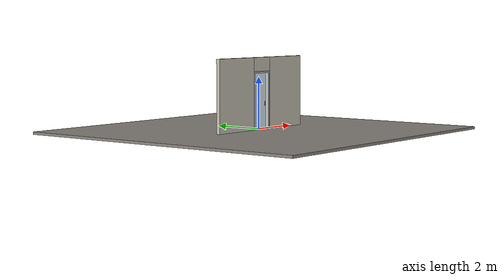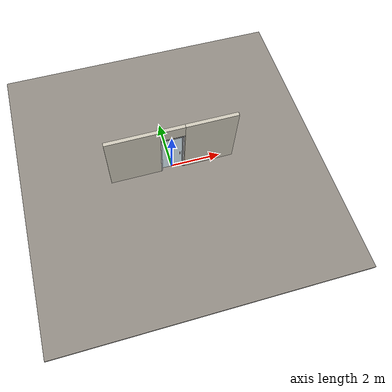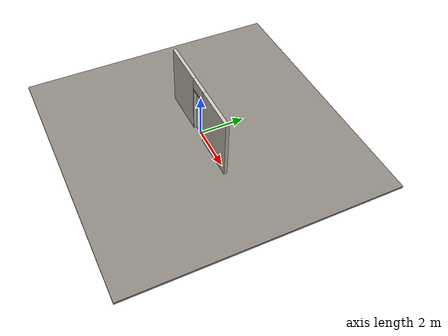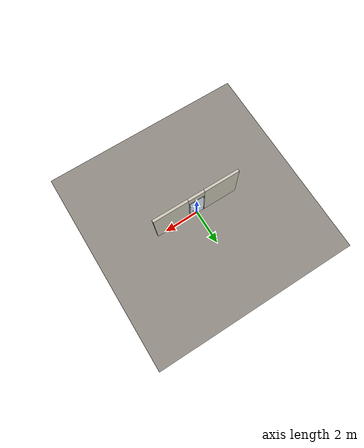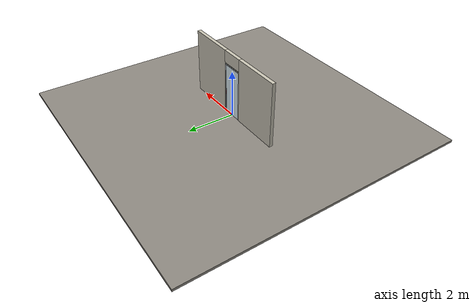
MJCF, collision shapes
<?xml version="1.0" ?>
<mujoco model="db0657_swing_single_minimal">
  <compiler angle="radian" meshdir="../../hardware" texturedir="../../textures" autolimits="true" inertiafromgeom="false"/>
  <option timestep="0.002" integrator="implicitfast" cone="elliptic" impratio="10" noslip_iterations="3">
    <flag multiccd="enable"/>
  </option>
  <size memory="16M"/>
  <default>
    <geom condim="4" solref="0.005 1" solimp="0.95 0.99 0.001"/>
    <joint solreflimit="0.005 1" solimplimit="0.95 0.99 0.001"/>
    <tendon solreflimit="0.005 1"/>
    <equality solref="0.002 1"/>
  </default>
  <visual>
    <headlight ambient="0.4 0.4 0.4" diffuse="0.7 0.7 0.7" specular="0.2 0.2 0.2"/>
    <quality shadowsize="4096"/>
    <map znear="0.01" zfar="60"/>
  </visual>
  <asset>
    <mesh name="pull_1e5d69a91a" file="pull_1e5d69a91a.obj"/>
    <material name="mat_floor" rgba="0.55 0.53 0.5 1" specular="0.2" shininess="0.15" reflectance="0"/>
    <material name="mat_wall" rgba="0.78 0.76 0.7 1" specular="0.2" shininess="0.1" reflectance="0"/>
    <material name="mat_leaf" rgba="0.85 0.92 0.95 0.25" specular="0.2" shininess="0.95" reflectance="0.1"/>
    <material name="mat_glass_leaf" rgba="0.85 0.92 0.95 0.25" specular="0.2" shininess="0.95" reflectance="0.1"/>
    <material name="mat_patch" rgba="0.75 0.76 0.77 1" specular="0.8" shininess="0.65" reflectance="0.4"/>
    <material name="mat_hinge" rgba="0.65 0.66 0.68 1" specular="0.74" shininess="0.5" reflectance="0.36"/>
    <material name="mat_op_stainless" rgba="0.75 0.76 0.77 1" specular="0.8" shininess="0.65" reflectance="0.4"/>
    <material name="mat_frame" rgba="0.8 0.81 0.83 1" specular="0.8" shininess="0.6" reflectance="0.4"/>
    <material name="mat_closer" rgba="0.75 0.76 0.77 1" specular="0.8" shininess="0.65" reflectance="0.4"/>
    <material name="mat_exit_sign" rgba="0.85 0.1 0.1 1" specular="0.2" shininess="0.6" reflectance="0"/>
    <material name="mat_sign_bracket" rgba="0.8 0.81 0.83 1" specular="0.8" shininess="0.6" reflectance="0.4"/>
    <material name="mat_sign" rgba="0.75 0.76 0.77 1" specular="0.8" shininess="0.65" reflectance="0.4"/>
    <texture name="skybox" type="skybox" builtin="gradient" rgb1="0.6 0.7 0.85" rgb2="0.9 0.92 0.95" width="256" height="256"/>
  </asset>
  <worldbody>
    <light name="sun" pos="1.5 -2.5 4" dir="-0.3 0.5 -0.8" directional="true" diffuse="0.8 0.8 0.8" specular="0.3 0.3 0.3" castshadow="true"/>
    <light name="fill" pos="-1.5 2.5 3" dir="0.3 -0.5 -0.7" directional="true" diffuse="0.35 0.35 0.4" castshadow="false"/>
    <camera name="robot_view" pos="0 -2.697312 1.812087" xyaxes="1 0 0 0 0.26963 0.962964" fovy="52"/>
    <camera name="far_view" pos="0 2.578313 1.812087" xyaxes="-1 0 0 0 -0.26963 0.962964" fovy="52"/>
    <camera name="iso" pos="2.004737 -2.275262 2.234138" xyaxes="0.741536 0.670913 0 -0.242917 0.268487 0.932151" fovy="46"/>
    <camera name="detail_handle" pos="0.48 -0.866 1.245" xyaxes="0.97561 0.219512 0 -0.070934 0.315262 0.94635" fovy="38"/>
    <geom name="floor" type="box" size="6 6 0.05" pos="0 0 -0.05" material="mat_floor" group="0" contype="1" conaffinity="1" friction="0.8 0.005 0.0001" density="2400"/>
    <geom name="wall_left" type="box" size="1.022 0.0725 1.3735" pos="-1.478 -0.0595 1.3735" material="mat_wall" group="0" contype="1" conaffinity="1" friction="0.6 0.005 0.0001" density="800"/>
    <geom name="wall_right" type="box" size="1.007 0.0725 1.3735" pos="1.493 -0.0595 1.3735" material="mat_wall" group="0" contype="1" conaffinity="1" friction="0.6 0.005 0.0001" density="800"/>
    <geom name="wall_header" type="box" size="0.471 0.0725 0.2625" pos="0.015 -0.0595 2.4845" material="mat_wall" group="0" contype="1" conaffinity="1" friction="0.6 0.005 0.0001" density="800"/>
    <geom name="jamb_hinge" type="box" size="0.0225 0.0725 1.0735" pos="-0.4335 -0.0595 1.0735" material="mat_frame" group="0" contype="1" conaffinity="1" friction="0.6 0.005 0.0001" density="300"/>
    <geom name="jamb_strike" type="box" size="0.0225 0.0725 1.0735" pos="0.4335 -0.0595 1.0735" material="mat_frame" group="0" contype="1" conaffinity="1" friction="0.6 0.005 0.0001" density="300"/>
    <geom name="stud_strike" type="box" size="0.015 0.0725 1.0735" pos="0.471 -0.0595 1.0735" material="mat_wall" group="0" contype="1" conaffinity="1" friction="0.6 0.005 0.0001" density="500"/>
    <geom name="jamb_head" type="box" size="0.471 0.0725 0.0225" pos="0.015 -0.0595 2.1695" material="mat_frame" group="0" contype="1" conaffinity="1" friction="0.6 0.005 0.0001" density="300"/>
    <geom name="head_stud" type="box" size="0.471 0.0725 0.015" pos="0.015 -0.0595 2.207" material="mat_wall" group="0" contype="1" conaffinity="1" friction="0.6 0.005 0.0001" density="500"/>
    <site name="approach_point" pos="0 -1.5 0" quat="1 0 0 0" size="0.05" rgba="0.2 0.9 0.2 0.5" group="4"/>
    <site name="goal_point" pos="0 1.5 0" quat="1 0 0 0" size="0.05" rgba="0.2 0.9 0.2 0.5" group="4"/>
    <site name="door_plane_center" pos="0 0 1.0735" quat="1 0 0 0" size="0.02" rgba="0.2 0.9 0.2 0.5" group="4"/>
    <body name="leaf" pos="-0.411 0 0">
      <inertial pos="0.486929 0 1.047494" mass="53.79826" quat="0.506981 0.506981 0.49292 -0.49292" diaginertia="3.176165626 15.401324401 18.477838484"/>
      <joint name="leaf_hinge" type="hinge" axis="0 0 1" pos="0.019 0.016 0" limited="true" range="0 1.745329" solreflimit="0.02 1" damping="8.168374" frictionloss="1.616912" stiffness="11.338198" springref="-1.952691" armature="0.02"/>
      <geom name="leaf_glass" type="box" size="0.4065 0.006 1.067" pos="0.4095 0 1.076" material="mat_glass_leaf" group="0" contype="1" conaffinity="1" friction="0.4 0.005 0.0001" density="1"/>
      <geom name="leaf_pull_n" type="mesh" mesh="pull_1e5d69a91a" pos="0.711 -0.006 0.965" quat="0.707107 0.707107 0 0" material="mat_op_stainless" group="1" contype="0" conaffinity="0" density="3000"/>
      <geom name="leaf_pull_col_n" type="capsule" size="0.0095 0.08" pos="0.711 -0.066 0.965" material="mat_op_stainless" group="3" contype="1" conaffinity="1" rgba="0.8 0.3 0.3 0.25" friction="0.7 0.01 0.0001" density="3000"/>
      <geom name="leaf_pull_p" type="mesh" mesh="pull_1e5d69a91a" pos="0.711 0.006 0.965" quat="-0.707107 0.707107 0 0" material="mat_op_stainless" group="1" contype="0" conaffinity="0" density="3000"/>
      <geom name="leaf_pull_col_p" type="capsule" size="0.0095 0.08" pos="0.711 0.066 0.965" material="mat_op_stainless" group="3" contype="1" conaffinity="1" rgba="0.8 0.3 0.3 0.25" friction="0.7 0.01 0.0001" density="3000"/>
      <site name="leaf_pull_grip_n" pos="0.711 -0.066 0.965" quat="1 0 0 0" size="0.012" rgba="0.2 0.9 0.2 0.5" group="4"/>
      <site name="leaf_pull_grip_p" pos="0.711 0.066 0.965" quat="1 0 0 0" size="0.012" rgba="0.2 0.9 0.2 0.5" group="4"/>
      <site name="leaf_edge_mid" pos="0.816 0 1.067" quat="1 0 0 0" size="0.02" rgba="0.2 0.9 0.2 0.5" group="4"/>
    </body>
  </worldbody>
  <sensor>
    <jointpos name="leaf_hinge_pos" joint="leaf_hinge"/>
    <jointvel name="leaf_hinge_vel" joint="leaf_hinge"/>
  </sensor>
</mujoco>
